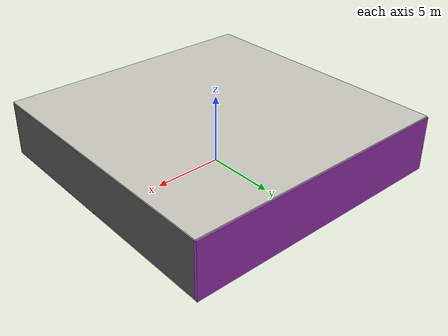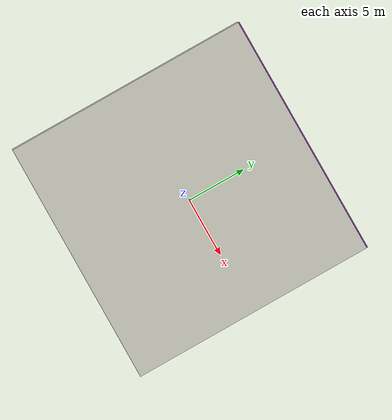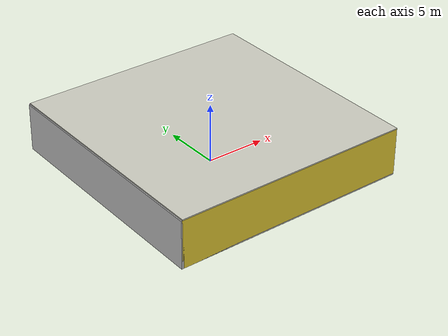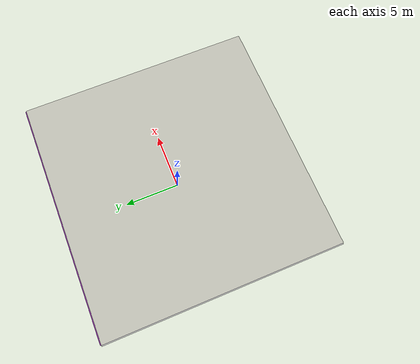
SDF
<sdf version="1.4">
 <world name="default">
  <physics type="ode">
   <max_step_size>0.001</max_step_size>
   <real_time_factor>1</real_time_factor>
   <real_time_update_rate>1000</real_time_update_rate>
   <gravity>0 0 -9.8</gravity>
  </physics>
  <scene><ambient>0.4 0.4 0.4 1</ambient><background>0.7 0.7 0.7 1</background><shadows>1</shadows></scene>
  <model name="Surrounding">
   <static>1</static>
   <link name="Ceiling">
    <collision name="Ceiling_Collision"><geometry><box><size>20 20 0.1</size></box></geometry></collision>
    <visual name="Ceiling_Visual">
     <geometry><box><size>20 20 0.1</size></box></geometry>
     <material>
      <script><uri>file://media/materials/scripts/gazebo.material</uri><name>Gazebo/PaintedWall</name></script>
     </material>
    </visual>
    <pose>0 0 4.05 0 0 0</pose>
   </link>
   <link name="Wall_South">
    <collision name="Wall_South_Collision">
     <geometry><box><size>20 0 4</size></box></geometry>
     <pose>0 0 2 0 -0 0</pose>
    </collision>
    <visual name="Wall_South_Visual">
     <pose>0 0 2 0 -0 0</pose>
     <geometry><box><size>20 0 4</size></box></geometry>
     <material>
      <script><uri>file://media/materials/scripts/gazebo.material</uri><name>Gazebo/ZincYellow</name></script>
     </material>
    </visual>
    <velocity_decay><linear>0</linear><angular>0</angular></velocity_decay>
    <pose>0 -10 0 0 -0 0</pose>
   </link>
   <link name="Wall_East">
    <collision name="Wall_21_Collision">
     <geometry><box><size>20 0 4</size></box></geometry>
     <pose>0 0 2 0 -0 0</pose>
    </collision>
    <visual name="Wall_21_Visual">
     <pose>0 0 2 0 -0 0</pose>
     <geometry><box><size>20 0 4</size></box></geometry>
     <material>
      <script><uri>file://media/materials/scripts/gazebo.material</uri><name>Gazebo/Road</name></script>
     </material>
    </visual>
    <velocity_decay><linear>0</linear><angular>0</angular></velocity_decay>
    <pose>10 0 0 0 -0 1.5708</pose>
   </link>
   <link name="Wall_North">
    <collision name="Wall_22_Collision">
     <geometry><box><size>20 0.2 4</size></box></geometry>
     <pose>0 0 2 0 -0 0</pose>
    </collision>
    <visual name="Wall_22_Visual">
     <pose>0 0 2 0 -0 0</pose>
     <geometry><box><size>20 0.2 4</size></box></geometry>
     <material>
      <script><uri>file://media/materials/scripts/gazebo.material</uri><name>Gazebo/PurpleGlow</name></script>
     </material>
    </visual>
    <velocity_decay><linear>0</linear><angular>0</angular></velocity_decay>
    <pose>0 10 0 0 -0 0</pose>
   </link>
   <link name="Wall_West">
    <collision name="Wall_23_Collision">
     <geometry><box><size>20 0.2 4</size></box></geometry>
     <pose>0 0 2 0 -0 0</pose>
    </collision>
    <visual name="Wall_23_Visual">
     <pose>0 0 2 0 -0 0</pose>
     <geometry><box><size>20 0.2 4</size></box></geometry>
     <material>
      <script><uri>file://media/materials/scripts/gazebo.material</uri><name>Gazebo/PioneerBody</name></script>
     </material>
    </visual>
    <velocity_decay><linear>0</linear><angular>0</angular></velocity_decay>
    <pose>-10 0 0 0 0 -1.5708</pose>
   </link>
   <link name="Ground_link">
    <collision name="collision">
     <pose>0 0 .05 0 -0 0</pose>
     <geometry><box><size>20 20 0.1</size></box></geometry>
    </collision>
    <visual name="visual">
     <pose>0 0 .05 0 -0 0</pose>
     <geometry><box><size>20 20 0.1</size></box></geometry>
     <material>
      <script><uri>file://media/materials/scripts/gazebo.material</uri><name>Gazebo/LightOff</name></script>
     </material>
    </visual>
   </link>
   <static>1</static>
  </model>
  <spherical_coordinates>
   <surface_model>EARTH_WGS84</surface_model>
   <latitude_deg>0</latitude_deg>
   <longitude_deg>0</longitude_deg>
   <elevation>0</elevation>
   <heading_deg>0</heading_deg>
  </spherical_coordinates>
  <light name="lightball_0" type="diffuse">
   <diffuse>0.8 0.8 0.8 1</diffuse>
   <specular>0.2 0.2 0.2 1</specular>
   <attenuation>
    <range>100</range>
    <constant>0.7</constant>
    <linear>0.01</linear>
    <quadratic>0.001</quadratic>
   </attenuation>
   <direction>-0.5 0.1 -0.9</direction>
   <pose>-9.21856239138 1.43637400195 0.796008428154 0 0 0</pose>
  </light>
  <light name="lightball_1" type="diffuse">
   <diffuse>0.8 0.8 0.8 1</diffuse>
   <specular>0.2 0.2 0.2 1</specular>
   <attenuation>
    <range>100</range>
    <constant>0.7</constant>
    <linear>0.01</linear>
    <quadratic>0.001</quadratic>
   </attenuation>
   <direction>-0.5 0.1 -0.9</direction>
   <pose>-1.05963977518 -7.59647560488 0.516931693328 0 0 0</pose>
  </light>
  <include><uri>model://table</uri><pose>-4.9933075408 5.065275235 0 0 0 0.565054174811</pose></include>
  <include>
   <uri>model://textured_shapes</uri>
   <pose>7.26976209538 -7.89844968391 0 0 0 1.34896340013</pose>
  </include>
 </world>
</sdf>

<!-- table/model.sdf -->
<sdf version="1.5">
  <model name="table">
    <static>true</static>
    <link name="link">
      <collision name="surface">
        <pose>0 0 1.0 0 0 0</pose>
        <geometry>
          <box>
            <size>1.5 0.8 0.03</size>
          </box>
        </geometry>
        <surface>
          <friction>
            <ode>
              <mu>0.6</mu>
              <mu2>0.6</mu2>
            </ode>
          </friction>
        </surface>
      </collision>
      <visual name="visual1">
        <pose>0 0 1.0 0 0 0</pose>
        <geometry>
          <box>
            <size>1.5 0.8 0.03</size>
          </box>
        </geometry>
        <material>
          <script>
            <uri>model://media/materials/scripts/gazebo.material</uri>
            <name>Gazebo/Wood</name>
          </script>
        </material>
      </visual>
      <collision name="front_left_leg">
        <pose>0.68 0.38 0.5 0 0 0</pose>
        <geometry>
          <cylinder>
            <radius>0.02</radius>
            <length>1.0</length>
          </cylinder>
        </geometry>
      </collision>
      <visual name="front_left_leg">
        <pose>0.68 0.38 0.5 0 0 0</pose>
        <geometry>
          <cylinder>
            <radius>0.02</radius>
            <length>1.0</length>
          </cylinder>
        </geometry>
        <material>
          <script>
            <uri>model://media/materials/scripts/gazebo.material</uri>
            <name>Gazebo/Grey</name>
          </script>
        </material>
      </visual>
      <collision name="front_right_leg">
        <pose>0.68 -0.38 0.5 0 0 0</pose>
        <geometry>
          <cylinder>
            <radius>0.02</radius>
            <length>1.0</length>
          </cylinder>
        </geometry>
      </collision>
      <visual name="front_right_leg">
        <pose>0.68 -0.38 0.5 0 0 0</pose>
        <geometry>
          <cylinder>
            <radius>0.02</radius>
            <length>1.0</length>
          </cylinder>
        </geometry>
        <material>
          <script>
            <uri>model://media/materials/scripts/gazebo.material</uri>
            <name>Gazebo/Grey</name>
          </script>
        </material>
      </visual>
      <collision name="back_right_leg">
        <pose>-0.68 -0.38 0.5 0 0 0</pose>
        <geometry>
          <cylinder>
            <radius>0.02</radius>
            <length>1.0</length>
          </cylinder>
        </geometry>
      </collision>
      <visual name="back_right_leg">
        <pose>-0.68 -0.38 0.5 0 0 0</pose>
        <geometry>
          <cylinder>
            <radius>0.02</radius>
            <length>1.0</length>
          </cylinder>
        </geometry>
        <material>
          <script>
            <uri>model://media/materials/scripts/gazebo.material</uri>
            <name>Gazebo/Grey</name>
          </script>
        </material>
      </visual>
      <collision name="back_left_leg">
        <pose>-0.68 0.38 0.5 0 0 0</pose>
        <geometry>
          <cylinder>
            <radius>0.02</radius>
            <length>1.0</length>
          </cylinder>
        </geometry>
      </collision>
      <visual name="back_left_leg">
        <pose>-0.68 0.38 0.5 0 0 0</pose>
        <geometry>
          <cylinder>
            <radius>0.02</radius>
            <length>1.0</length>
          </cylinder>
        </geometry>
        <material>
          <script>
            <uri>model://media/materials/scripts/gazebo.material</uri>
            <name>Gazebo/Grey</name>
          </script>
        </material>
      </visual>
    </link>
  </model>
</sdf>

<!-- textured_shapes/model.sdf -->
<sdf version="1.6">
  <model name="textured_shapes">
    <pose>0 0 0.5 0 0 0</pose>
    <link name="box">
      <pose>0 -1.5 0 0 0 0</pose>
      <collision name="collision">
        <geometry>
          <box>
            <size>1 1 1</size>
          </box>
        </geometry>
      </collision>
      <visual name="visual">
        <geometry>
          <box>
            <size>1 1 1</size>
          </box>
        </geometry>
        <material>
          <script>
            <uri>model://../model_source/models/textured_shapes/materials/scripts</uri>
            <uri>model://../model_source/models/textured_shapes/materials/textures</uri>
            <name>TexturedShape/Squares</name>
          </script>
        </material>
      </visual>
    </link>
    <link name="sphere">
      <collision name="collision">
        <geometry>
          <sphere>
            <radius>0.5</radius>
          </sphere>
        </geometry>
      </collision>
      <visual name="visual">
        <geometry>
          <sphere>
            <radius>0.5</radius>
          </sphere>
        </geometry>
        <material>
          <script>
            <uri>model://../model_source/models/textured_shapes/materials/scripts</uri>
            <uri>model://../model_source/models/textured_shapes/materials/textures</uri>
            <name>TexturedShape/Squares</name>
          </script>
        </material>
      </visual>
    </link>
    <link name="cylinder">
      <pose>0 1.5 0 0 0 0</pose>
      <collision name="collision">
        <geometry>
          <cylinder>
            <radius>0.5</radius>
            <length>1</length>
          </cylinder>
        </geometry>
      </collision>
      <visual name="visual">
        <geometry>
          <cylinder>
            <radius>0.5</radius>
            <length>1</length>
          </cylinder>
        </geometry>
        <material>
          <script>
            <uri>model://../model_source/models/textured_shapes/materials/scripts</uri>
            <uri>model://../model_source/models/textured_shapes/materials/textures</uri>
            <name>TexturedShape/Squares</name>
          </script>
        </material>
      </visual>
    </link>
  </model>
</sdf>
